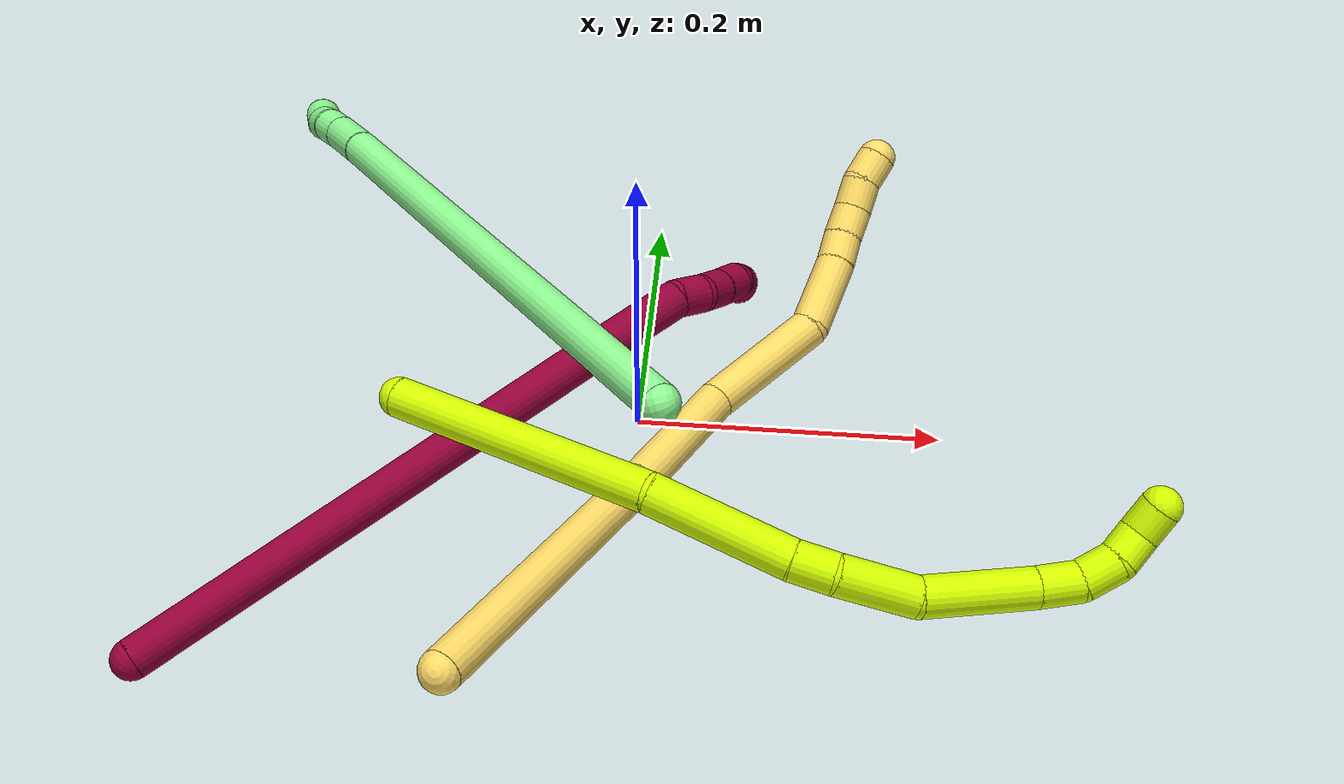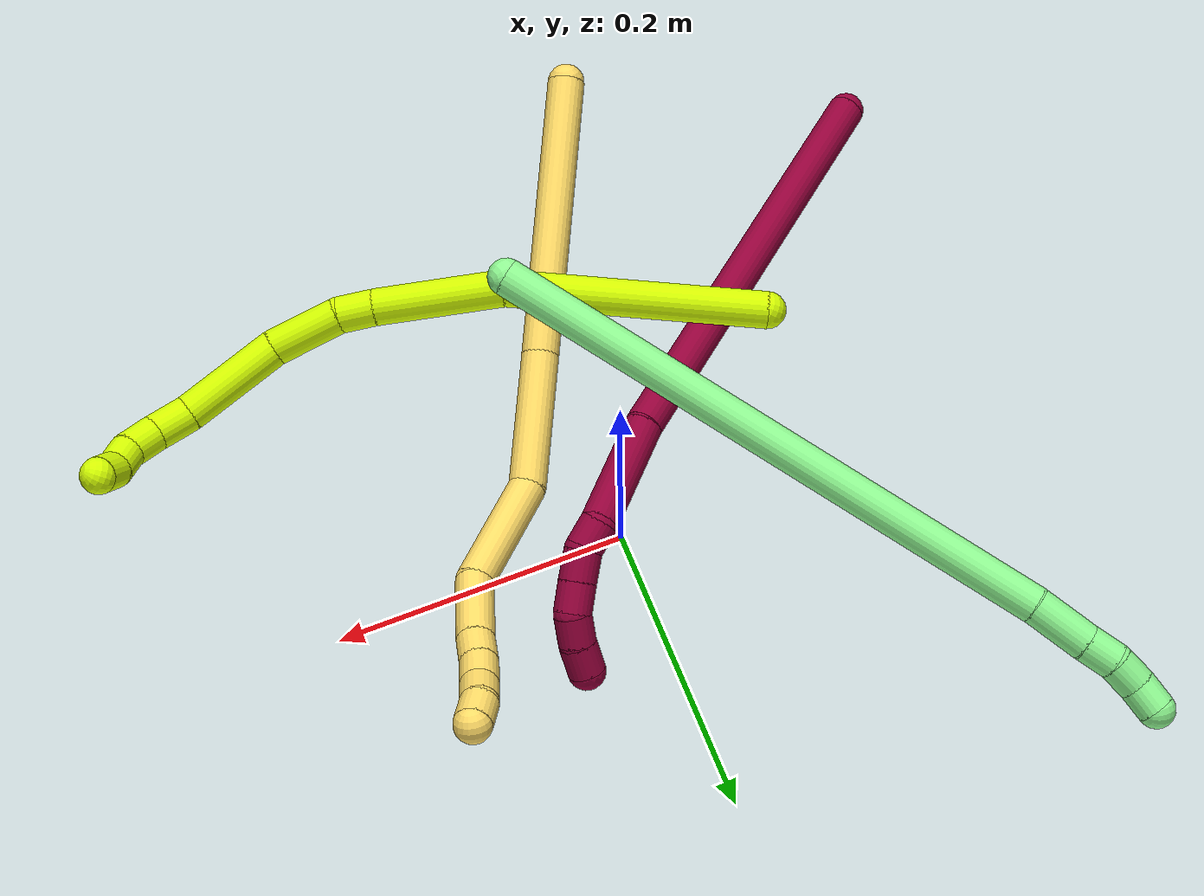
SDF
<sdf version="1.7">
 <world name="default">
  <model name="5">
   <static>0</static>
   <link name="5">
    <collision name="collision-cylinder-e_1_1_4">
     <pose>0.028454 0.061162 -0.070764 -2.42885 0.29532 -0.760254</pose>
     <geometry><cylinder><radius>0.0125</radius><length>0.19553</length></cylinder></geometry>
     <surface>
      <friction><ode><mu>1.16</mu><mu2>1.16</mu2><slip1>0</slip1><slip2>0</slip2></ode></friction>
      <contact><ode><kp>1e+06</kp><kd>1</kd><max_vel>0</max_vel><min_depth>0.001</min_depth></ode></contact>
     </surface>
    </collision>
    <visual name="visual-cylinder-e_1_1_4">
     <pose>0.028454 0.061162 -0.070764 -2.42885 0.29532 -0.760254</pose>
     <geometry><cylinder><radius>0.0125</radius><length>0.19553</length></cylinder></geometry>
     <material><ambient>1 0.858824 0.4 1</ambient></material>
    </visual>
    <collision name="collision-cylinder-e_2_4_5">
     <pose>0.070495 0.153706 -0.172856 -2.35534 0.297323 -0.693109</pose>
     <geometry><cylinder><radius>0.0125</radius><length>0.092755</length></cylinder></geometry>
     <surface>
      <friction><ode><mu>1.16</mu><mu2>1.16</mu2><slip1>0</slip1><slip2>0</slip2></ode></friction>
      <contact><ode><kp>1e+06</kp><kd>1</kd><max_vel>0</max_vel><min_depth>0.001</min_depth></ode></contact>
     </surface>
    </collision>
    <visual name="visual-cylinder-e_2_4_5">
     <pose>0.070495 0.153706 -0.172856 -2.35534 0.297323 -0.693109</pose>
     <geometry><cylinder><radius>0.0125</radius><length>0.092755</length></cylinder></geometry>
     <material><ambient>1 0.858824 0.4 1</ambient></material>
    </visual>
    <collision name="collision-cylinder-e_3_5_6">
     <pose>0.107942 0.215086 -0.217826 -1.99758 0.626671 -0.932528</pose>
     <geometry><cylinder><radius>0.0125</radius><length>0.081371</length></cylinder></geometry>
     <surface>
      <friction><ode><mu>1.16</mu><mu2>1.16</mu2><slip1>0</slip1><slip2>0</slip2></ode></friction>
      <contact><ode><kp>1e+06</kp><kd>1</kd><max_vel>0</max_vel><min_depth>0.001</min_depth></ode></contact>
     </surface>
    </collision>
    <visual name="visual-cylinder-e_3_5_6">
     <pose>0.107942 0.215086 -0.217826 -1.99758 0.626671 -0.932528</pose>
     <geometry><cylinder><radius>0.0125</radius><length>0.081371</length></cylinder></geometry>
     <material><ambient>1 0.858824 0.4 1</ambient></material>
    </visual>
    <collision name="collision-cylinder-e_4_6_7">
     <pose>0.135778 0.26844 -0.238999 -1.88275 0.160643 -0.220176</pose>
     <geometry><cylinder><radius>0.0125</radius><length>0.049719</length></cylinder></geometry>
     <surface>
      <friction><ode><mu>1.16</mu><mu2>1.16</mu2><slip1>0</slip1><slip2>0</slip2></ode></friction>
      <contact><ode><kp>1e+06</kp><kd>1</kd><max_vel>0</max_vel><min_depth>0.001</min_depth></ode></contact>
     </surface>
    </collision>
    <visual name="visual-cylinder-e_4_6_7">
     <pose>0.135778 0.26844 -0.238999 -1.88275 0.160643 -0.220176</pose>
     <geometry><cylinder><radius>0.0125</radius><length>0.049719</length></cylinder></geometry>
     <material><ambient>1 0.858824 0.4 1</ambient></material>
    </visual>
    <collision name="collision-cylinder-e_5_7_8">
     <pose>0.140377 0.301479 -0.249004 -1.82087 0.062164 -0.080021</pose>
     <geometry><cylinder><radius>0.0125</radius><length>0.020029</length></cylinder></geometry>
     <surface>
      <friction><ode><mu>1.16</mu><mu2>1.16</mu2><slip1>0</slip1><slip2>0</slip2></ode></friction>
      <contact><ode><kp>1e+06</kp><kd>1</kd><max_vel>0</max_vel><min_depth>0.001</min_depth></ode></contact>
     </surface>
    </collision>
    <visual name="visual-cylinder-e_5_7_8">
     <pose>0.140377 0.301479 -0.249004 -1.82087 0.062164 -0.080021</pose>
     <geometry><cylinder><radius>0.0125</radius><length>0.020029</length></cylinder></geometry>
     <material><ambient>1 0.858824 0.4 1</ambient></material>
    </visual>
    <collision name="collision-cylinder-e_6_8_9">
     <pose>0.142546 0.321198 -0.253154 -1.73637 0.150923 -0.178102</pose>
     <geometry><cylinder><radius>0.0125</radius><length>0.02058</length></cylinder></geometry>
     <surface>
      <friction><ode><mu>1.16</mu><mu2>1.16</mu2><slip1>0</slip1><slip2>0</slip2></ode></friction>
      <contact><ode><kp>1e+06</kp><kd>1</kd><max_vel>0</max_vel><min_depth>0.001</min_depth></ode></contact>
     </surface>
    </collision>
    <visual name="visual-cylinder-e_6_8_9">
     <pose>0.142546 0.321198 -0.253154 -1.73637 0.150923 -0.178102</pose>
     <geometry><cylinder><radius>0.0125</radius><length>0.02058</length></cylinder></geometry>
     <material><ambient>1 0.858824 0.4 1</ambient></material>
    </visual>
    <collision name="collision-cylinder-e_7_9_10">
     <pose>0.145447 0.341145 -0.254873 -1.57499 0.135792 -0.136362</pose>
     <geometry><cylinder><radius>0.0125</radius><length>0.02001</length></cylinder></geometry>
     <surface>
      <friction><ode><mu>1.16</mu><mu2>1.16</mu2><slip1>0</slip1><slip2>0</slip2></ode></friction>
      <contact><ode><kp>1e+06</kp><kd>1</kd><max_vel>0</max_vel><min_depth>0.001</min_depth></ode></contact>
     </surface>
    </collision>
    <visual name="visual-cylinder-e_7_9_10">
     <pose>0.145447 0.341145 -0.254873 -1.57499 0.135792 -0.136362</pose>
     <geometry><cylinder><radius>0.0125</radius><length>0.02001</length></cylinder></geometry>
     <material><ambient>1 0.858824 0.4 1</ambient></material>
    </visual>
    <collision name="collision-cylinder-e_8_10_2">
     <pose>0.1503 0.360344 -0.25617 -1.70525 0.3573 -0.407557</pose>
     <geometry><cylinder><radius>0.0125</radius><length>0.020006</length></cylinder></geometry>
     <surface>
      <friction><ode><mu>1.16</mu><mu2>1.16</mu2><slip1>0</slip1><slip2>0</slip2></ode></friction>
      <contact><ode><kp>1e+06</kp><kd>1</kd><max_vel>0</max_vel><min_depth>0.001</min_depth></ode></contact>
     </surface>
    </collision>
    <visual name="visual-cylinder-e_8_10_2">
     <pose>0.1503 0.360344 -0.25617 -1.70525 0.3573 -0.407557</pose>
     <geometry><cylinder><radius>0.0125</radius><length>0.020006</length></cylinder></geometry>
     <material><ambient>1 0.858824 0.4 1</ambient></material>
    </visual>
    <collision name="collision-sphere-2">
     <pose>0.153799 0.369631 -0.257427 0 -0 0</pose>
     <geometry><sphere><radius>0.0125</radius></sphere></geometry>
     <surface>
      <friction><ode><mu>1.16</mu><mu2>1.16</mu2><slip1>0</slip1><slip2>0</slip2></ode></friction>
      <contact><ode><kp>1e+06</kp><kd>1</kd><max_vel>0</max_vel><min_depth>0.001</min_depth></ode></contact>
     </surface>
    </collision>
    <visual name="visual-sphere-2">
     <pose>0.153799 0.369631 -0.257427 0 -0 0</pose>
     <geometry><sphere><radius>0.0125</radius></sphere></geometry>
     <material><ambient>1 0.858824 0.4 1</ambient></material>
    </visual>
    <collision name="collision-sphere-10">
     <pose>0.146802 0.351058 -0.254914 0 -0 0</pose>
     <geometry><sphere><radius>0.0125</radius></sphere></geometry>
     <surface>
      <friction><ode><mu>1.16</mu><mu2>1.16</mu2><slip1>0</slip1><slip2>0</slip2></ode></friction>
      <contact><ode><kp>1e+06</kp><kd>1</kd><max_vel>0</max_vel><min_depth>0.001</min_depth></ode></contact>
     </surface>
    </collision>
    <visual name="visual-sphere-10">
     <pose>0.146802 0.351058 -0.254914 0 -0 0</pose>
     <geometry><sphere><radius>0.0125</radius></sphere></geometry>
     <material><ambient>1 0.858824 0.4 1</ambient></material>
    </visual>
    <collision name="collision-sphere-9">
     <pose>0.144093 0.331232 -0.254831 0 -0 0</pose>
     <geometry><sphere><radius>0.0125</radius></sphere></geometry>
     <surface>
      <friction><ode><mu>1.16</mu><mu2>1.16</mu2><slip1>0</slip1><slip2>0</slip2></ode></friction>
      <contact><ode><kp>1e+06</kp><kd>1</kd><max_vel>0</max_vel><min_depth>0.001</min_depth></ode></contact>
     </surface>
    </collision>
    <visual name="visual-sphere-9">
     <pose>0.144093 0.331232 -0.254831 0 -0 0</pose>
     <geometry><sphere><radius>0.0125</radius></sphere></geometry>
     <material><ambient>1 0.858824 0.4 1</ambient></material>
    </visual>
    <collision name="collision-sphere-4">
     <pose>0.056908 0.122324 -0.141529 0 -0 0</pose>
     <geometry><sphere><radius>0.0125</radius></sphere></geometry>
     <surface>
      <friction><ode><mu>1.16</mu><mu2>1.16</mu2><slip1>0</slip1><slip2>0</slip2></ode></friction>
      <contact><ode><kp>1e+06</kp><kd>1</kd><max_vel>0</max_vel><min_depth>0.001</min_depth></ode></contact>
     </surface>
    </collision>
    <visual name="visual-sphere-4">
     <pose>0.056908 0.122324 -0.141529 0 -0 0</pose>
     <geometry><sphere><radius>0.0125</radius></sphere></geometry>
     <material><ambient>1 0.858824 0.4 1</ambient></material>
    </visual>
    <collision name="collision-sphere-1">
     <geometry><sphere><radius>0.0125</radius></sphere></geometry>
     <surface>
      <friction><ode><mu>1.16</mu><mu2>1.16</mu2><slip1>0</slip1><slip2>0</slip2></ode></friction>
      <contact><ode><kp>1e+06</kp><kd>1</kd><max_vel>0</max_vel><min_depth>0.001</min_depth></ode></contact>
     </surface>
    </collision>
    <visual name="visual-sphere-1">
     <geometry><sphere><radius>0.0125</radius></sphere></geometry>
     <material><ambient>1 0.858824 0.4 1</ambient></material>
    </visual>
    <collision name="collision-sphere-8">
     <pose>0.140999 0.311164 -0.251478 0 -0 0</pose>
     <geometry><sphere><radius>0.0125</radius></sphere></geometry>
     <surface>
      <friction><ode><mu>1.16</mu><mu2>1.16</mu2><slip1>0</slip1><slip2>0</slip2></ode></friction>
      <contact><ode><kp>1e+06</kp><kd>1</kd><max_vel>0</max_vel><min_depth>0.001</min_depth></ode></contact>
     </surface>
    </collision>
    <visual name="visual-sphere-8">
     <pose>0.140999 0.311164 -0.251478 0 -0 0</pose>
     <geometry><sphere><radius>0.0125</radius></sphere></geometry>
     <material><ambient>1 0.858824 0.4 1</ambient></material>
    </visual>
    <collision name="collision-sphere-5">
     <pose>0.084082 0.185088 -0.204184 0 -0 0</pose>
     <geometry><sphere><radius>0.0125</radius></sphere></geometry>
     <surface>
      <friction><ode><mu>1.16</mu><mu2>1.16</mu2><slip1>0</slip1><slip2>0</slip2></ode></friction>
      <contact><ode><kp>1e+06</kp><kd>1</kd><max_vel>0</max_vel><min_depth>0.001</min_depth></ode></contact>
     </surface>
    </collision>
    <visual name="visual-sphere-5">
     <pose>0.084082 0.185088 -0.204184 0 -0 0</pose>
     <geometry><sphere><radius>0.0125</radius></sphere></geometry>
     <material><ambient>1 0.858824 0.4 1</ambient></material>
    </visual>
    <collision name="collision-sphere-6">
     <pose>0.131802 0.245085 -0.231467 0 -0 0</pose>
     <geometry><sphere><radius>0.0125</radius></sphere></geometry>
     <surface>
      <friction><ode><mu>1.16</mu><mu2>1.16</mu2><slip1>0</slip1><slip2>0</slip2></ode></friction>
      <contact><ode><kp>1e+06</kp><kd>1</kd><max_vel>0</max_vel><min_depth>0.001</min_depth></ode></contact>
     </surface>
    </collision>
    <visual name="visual-sphere-6">
     <pose>0.131802 0.245085 -0.231467 0 -0 0</pose>
     <geometry><sphere><radius>0.0125</radius></sphere></geometry>
     <material><ambient>1 0.858824 0.4 1</ambient></material>
    </visual>
    <collision name="collision-sphere-7">
     <pose>0.139754 0.291795 -0.24653 0 -0 0</pose>
     <geometry><sphere><radius>0.0125</radius></sphere></geometry>
     <surface>
      <friction><ode><mu>1.16</mu><mu2>1.16</mu2><slip1>0</slip1><slip2>0</slip2></ode></friction>
      <contact><ode><kp>1e+06</kp><kd>1</kd><max_vel>0</max_vel><min_depth>0.001</min_depth></ode></contact>
     </surface>
    </collision>
    <visual name="visual-sphere-7">
     <pose>0.139754 0.291795 -0.24653 0 -0 0</pose>
     <geometry><sphere><radius>0.0125</radius></sphere></geometry>
     <material><ambient>1 0.858824 0.4 1</ambient></material>
    </visual>
    <inertial>
     <pose>0.078598 0.167497 -0.159799 0 -0 0</pose>
     <mass>0.5</mass>
     <inertia>
      <ixx>4.8e-05</ixx>
      <ixy>0</ixy>
      <ixz>0</ixz>
      <iyy>-0.000752</iyy>
      <iyz>0</iyz>
      <izz>-0.00075</izz>
     </inertia>
    </inertial>
   </link>
   <pose>-0.074197 -0.288507 0.101985 0.665165 -0.019816 -0.158842</pose>
  </model>
  <model name="8">
   <static>0</static>
   <link name="8">
    <collision name="collision-cylinder-e_1_1_4">
     <pose>0.115211 0.041289 0.103209 -0.380553 0.803287 -0.163249</pose>
     <geometry><cylinder><radius>0.0125</radius><length>0.320191</length></cylinder></geometry>
     <surface>
      <friction><ode><mu>1.16</mu><mu2>1.16</mu2><slip1>0</slip1><slip2>0</slip2></ode></friction>
      <contact><ode><kp>1e+06</kp><kd>1</kd><max_vel>0</max_vel><min_depth>0.001</min_depth></ode></contact>
     </surface>
    </collision>
    <visual name="visual-cylinder-e_1_1_4">
     <pose>0.115211 0.041289 0.103209 -0.380553 0.803287 -0.163249</pose>
     <geometry><cylinder><radius>0.0125</radius><length>0.320191</length></cylinder></geometry>
     <material><ambient>0.584314 0 0.227451 1</ambient></material>
    </visual>
    <collision name="collision-cylinder-e_2_4_5">
     <pose>0.259997 0.096404 0.22653 -0.602225 0.880844 -0.290663</pose>
     <geometry><cylinder><radius>0.0125</radius><length>0.076688</length></cylinder></geometry>
     <surface>
      <friction><ode><mu>1.16</mu><mu2>1.16</mu2><slip1>0</slip1><slip2>0</slip2></ode></friction>
      <contact><ode><kp>1e+06</kp><kd>1</kd><max_vel>0</max_vel><min_depth>0.001</min_depth></ode></contact>
     </surface>
    </collision>
    <visual name="visual-cylinder-e_2_4_5">
     <pose>0.259997 0.096404 0.22653 -0.602225 0.880844 -0.290663</pose>
     <geometry><cylinder><radius>0.0125</radius><length>0.076688</length></cylinder></geometry>
     <material><ambient>0.584314 0 0.227451 1</ambient></material>
    </visual>
    <collision name="collision-cylinder-e_3_5_6">
     <pose>0.298986 0.112392 0.24943 -0.659979 1.21229 -0.466226</pose>
     <geometry><cylinder><radius>0.0125</radius><length>0.02011</length></cylinder></geometry>
     <surface>
      <friction><ode><mu>1.16</mu><mu2>1.16</mu2><slip1>0</slip1><slip2>0</slip2></ode></friction>
      <contact><ode><kp>1e+06</kp><kd>1</kd><max_vel>0</max_vel><min_depth>0.001</min_depth></ode></contact>
     </surface>
    </collision>
    <visual name="visual-cylinder-e_3_5_6">
     <pose>0.298986 0.112392 0.24943 -0.659979 1.21229 -0.466226</pose>
     <geometry><cylinder><radius>0.0125</radius><length>0.02011</length></cylinder></geometry>
     <material><ambient>0.584314 0 0.227451 1</ambient></material>
    </visual>
    <collision name="collision-cylinder-e_4_6_7">
     <pose>0.317423 0.119784 0.252725 -1.47395 1.04351 -0.96179</pose>
     <geometry><cylinder><radius>0.0125</radius><length>0.020878</length></cylinder></geometry>
     <surface>
      <friction><ode><mu>1.16</mu><mu2>1.16</mu2><slip1>0</slip1><slip2>0</slip2></ode></friction>
      <contact><ode><kp>1e+06</kp><kd>1</kd><max_vel>0</max_vel><min_depth>0.001</min_depth></ode></contact>
     </surface>
    </collision>
    <visual name="visual-cylinder-e_4_6_7">
     <pose>0.317423 0.119784 0.252725 -1.47395 1.04351 -0.96179</pose>
     <geometry><cylinder><radius>0.0125</radius><length>0.020878</length></cylinder></geometry>
     <material><ambient>0.584314 0 0.227451 1</ambient></material>
    </visual>
    <collision name="collision-cylinder-e_5_7_8">
     <pose>0.335221 0.13056 0.253982 -1.43664 1.00304 -0.893819</pose>
     <geometry><cylinder><radius>0.0125</radius><length>0.020822</length></cylinder></geometry>
     <surface>
      <friction><ode><mu>1.16</mu><mu2>1.16</mu2><slip1>0</slip1><slip2>0</slip2></ode></friction>
      <contact><ode><kp>1e+06</kp><kd>1</kd><max_vel>0</max_vel><min_depth>0.001</min_depth></ode></contact>
     </surface>
    </collision>
    <visual name="visual-cylinder-e_5_7_8">
     <pose>0.335221 0.13056 0.253982 -1.43664 1.00304 -0.893819</pose>
     <geometry><cylinder><radius>0.0125</radius><length>0.020822</length></cylinder></geometry>
     <material><ambient>0.584314 0 0.227451 1</ambient></material>
    </visual>
    <collision name="collision-cylinder-e_6_8_9">
     <pose>0.350947 0.142614 0.251213 -2.06638 0.75421 -1.17276</pose>
     <geometry><cylinder><radius>0.0125</radius><length>0.020296</length></cylinder></geometry>
     <surface>
      <friction><ode><mu>1.16</mu><mu2>1.16</mu2><slip1>0</slip1><slip2>0</slip2></ode></friction>
      <contact><ode><kp>1e+06</kp><kd>1</kd><max_vel>0</max_vel><min_depth>0.001</min_depth></ode></contact>
     </surface>
    </collision>
    <visual name="visual-cylinder-e_6_8_9">
     <pose>0.350947 0.142614 0.251213 -2.06638 0.75421 -1.17276</pose>
     <geometry><cylinder><radius>0.0125</radius><length>0.020296</length></cylinder></geometry>
     <material><ambient>0.584314 0 0.227451 1</ambient></material>
    </visual>
    <collision name="collision-cylinder-e_7_9_2">
     <pose>0.363936 0.156186 0.242797 -2.17709 0.612391 -1.08659</pose>
     <geometry><cylinder><radius>0.0125</radius><length>0.021016</length></cylinder></geometry>
     <surface>
      <friction><ode><mu>1.16</mu><mu2>1.16</mu2><slip1>0</slip1><slip2>0</slip2></ode></friction>
      <contact><ode><kp>1e+06</kp><kd>1</kd><max_vel>0</max_vel><min_depth>0.001</min_depth></ode></contact>
     </surface>
    </collision>
    <visual name="visual-cylinder-e_7_9_2">
     <pose>0.363936 0.156186 0.242797 -2.17709 0.612391 -1.08659</pose>
     <geometry><cylinder><radius>0.0125</radius><length>0.021016</length></cylinder></geometry>
     <material><ambient>0.584314 0 0.227451 1</ambient></material>
    </visual>
    <collision name="collision-sphere-2">
     <pose>0.369976 0.163252 0.237897 0 -0 0</pose>
     <geometry><sphere><radius>0.0125</radius></sphere></geometry>
     <surface>
      <friction><ode><mu>1.16</mu><mu2>1.16</mu2><slip1>0</slip1><slip2>0</slip2></ode></friction>
      <contact><ode><kp>1e+06</kp><kd>1</kd><max_vel>0</max_vel><min_depth>0.001</min_depth></ode></contact>
     </surface>
    </collision>
    <visual name="visual-sphere-2">
     <pose>0.369976 0.163252 0.237897 0 -0 0</pose>
     <geometry><sphere><radius>0.0125</radius></sphere></geometry>
     <material><ambient>0.584314 0 0.227451 1</ambient></material>
    </visual>
    <collision name="collision-sphere-9">
     <pose>0.357896 0.14912 0.247696 0 -0 0</pose>
     <geometry><sphere><radius>0.0125</radius></sphere></geometry>
     <surface>
      <friction><ode><mu>1.16</mu><mu2>1.16</mu2><slip1>0</slip1><slip2>0</slip2></ode></friction>
      <contact><ode><kp>1e+06</kp><kd>1</kd><max_vel>0</max_vel><min_depth>0.001</min_depth></ode></contact>
     </surface>
    </collision>
    <visual name="visual-sphere-9">
     <pose>0.357896 0.14912 0.247696 0 -0 0</pose>
     <geometry><sphere><radius>0.0125</radius></sphere></geometry>
     <material><ambient>0.584314 0 0.227451 1</ambient></material>
    </visual>
    <collision name="collision-sphere-4">
     <pose>0.230423 0.082578 0.206418 0 -0 0</pose>
     <geometry><sphere><radius>0.0125</radius></sphere></geometry>
     <surface>
      <friction><ode><mu>1.16</mu><mu2>1.16</mu2><slip1>0</slip1><slip2>0</slip2></ode></friction>
      <contact><ode><kp>1e+06</kp><kd>1</kd><max_vel>0</max_vel><min_depth>0.001</min_depth></ode></contact>
     </surface>
    </collision>
    <visual name="visual-sphere-4">
     <pose>0.230423 0.082578 0.206418 0 -0 0</pose>
     <geometry><sphere><radius>0.0125</radius></sphere></geometry>
     <material><ambient>0.584314 0 0.227451 1</ambient></material>
    </visual>
    <collision name="collision-sphere-1">
     <geometry><sphere><radius>0.0125</radius></sphere></geometry>
     <surface>
      <friction><ode><mu>1.16</mu><mu2>1.16</mu2><slip1>0</slip1><slip2>0</slip2></ode></friction>
      <contact><ode><kp>1e+06</kp><kd>1</kd><max_vel>0</max_vel><min_depth>0.001</min_depth></ode></contact>
     </surface>
    </collision>
    <visual name="visual-sphere-1">
     <geometry><sphere><radius>0.0125</radius></sphere></geometry>
     <material><ambient>0.584314 0 0.227451 1</ambient></material>
    </visual>
    <collision name="collision-sphere-8">
     <pose>0.343999 0.136108 0.25473 0 -0 0</pose>
     <geometry><sphere><radius>0.0125</radius></sphere></geometry>
     <surface>
      <friction><ode><mu>1.16</mu><mu2>1.16</mu2><slip1>0</slip1><slip2>0</slip2></ode></friction>
      <contact><ode><kp>1e+06</kp><kd>1</kd><max_vel>0</max_vel><min_depth>0.001</min_depth></ode></contact>
     </surface>
    </collision>
    <visual name="visual-sphere-8">
     <pose>0.343999 0.136108 0.25473 0 -0 0</pose>
     <geometry><sphere><radius>0.0125</radius></sphere></geometry>
     <material><ambient>0.584314 0 0.227451 1</ambient></material>
    </visual>
    <collision name="collision-sphere-5">
     <pose>0.28957 0.110229 0.246643 0 -0 0</pose>
     <geometry><sphere><radius>0.0125</radius></sphere></geometry>
     <surface>
      <friction><ode><mu>1.16</mu><mu2>1.16</mu2><slip1>0</slip1><slip2>0</slip2></ode></friction>
      <contact><ode><kp>1e+06</kp><kd>1</kd><max_vel>0</max_vel><min_depth>0.001</min_depth></ode></contact>
     </surface>
    </collision>
    <visual name="visual-sphere-5">
     <pose>0.28957 0.110229 0.246643 0 -0 0</pose>
     <geometry><sphere><radius>0.0125</radius></sphere></geometry>
     <material><ambient>0.584314 0 0.227451 1</ambient></material>
    </visual>
    <collision name="collision-sphere-6">
     <pose>0.308402 0.114555 0.252217 0 -0 0</pose>
     <geometry><sphere><radius>0.0125</radius></sphere></geometry>
     <surface>
      <friction><ode><mu>1.16</mu><mu2>1.16</mu2><slip1>0</slip1><slip2>0</slip2></ode></friction>
      <contact><ode><kp>1e+06</kp><kd>1</kd><max_vel>0</max_vel><min_depth>0.001</min_depth></ode></contact>
     </surface>
    </collision>
    <visual name="visual-sphere-6">
     <pose>0.308402 0.114555 0.252217 0 -0 0</pose>
     <geometry><sphere><radius>0.0125</radius></sphere></geometry>
     <material><ambient>0.584314 0 0.227451 1</ambient></material>
    </visual>
    <collision name="collision-sphere-7">
     <pose>0.326444 0.125012 0.253233 0 -0 0</pose>
     <geometry><sphere><radius>0.0125</radius></sphere></geometry>
     <surface>
      <friction><ode><mu>1.16</mu><mu2>1.16</mu2><slip1>0</slip1><slip2>0</slip2></ode></friction>
      <contact><ode><kp>1e+06</kp><kd>1</kd><max_vel>0</max_vel><min_depth>0.001</min_depth></ode></contact>
     </surface>
    </collision>
    <visual name="visual-sphere-7">
     <pose>0.326444 0.125012 0.253233 0 -0 0</pose>
     <geometry><sphere><radius>0.0125</radius></sphere></geometry>
     <material><ambient>0.584314 0 0.227451 1</ambient></material>
    </visual>
    <inertial>
     <pose>0.182438 0.06854 0.152401 0 -0 0</pose>
     <mass>0.5</mass>
     <inertia>
      <ixx>0.001618</ixx>
      <ixy>0</ixy>
      <ixz>0</ixz>
      <iyy>0.00237</iyy>
      <iyz>0</iyz>
      <izz>-0.002724</izz>
     </inertia>
    </inertial>
   </link>
   <pose>-0.267637 -0.238865 0.023773 -0.044699 0.511779 0.413579</pose>
  </model>
  <model name="13">
   <static>0</static>
   <link name="13">
    <collision name="collision-cylinder-e_1_1_4">
     <pose>-0.16969 0.018698 0.100647 -0.183685 -1.02797 0.103909</pose>
     <geometry><cylinder><radius>0.0125</radius><length>0.396353</length></cylinder></geometry>
     <surface>
      <friction><ode><mu>1.16</mu><mu2>1.16</mu2><slip1>0</slip1><slip2>0</slip2></ode></friction>
      <contact><ode><kp>1e+06</kp><kd>1</kd><max_vel>0</max_vel><min_depth>0.001</min_depth></ode></contact>
     </surface>
    </collision>
    <visual name="visual-cylinder-e_1_1_4">
     <pose>-0.16969 0.018698 0.100647 -0.183685 -1.02797 0.103909</pose>
     <geometry><cylinder><radius>0.0125</radius><length>0.396353</length></cylinder></geometry>
     <material><ambient>0.564706 0.984314 0.572549 1</ambient></material>
    </visual>
    <collision name="collision-cylinder-e_2_4_5">
     <pose>-0.356756 0.037182 0.211173 0.021644 -1.05373 -0.012591</pose>
     <geometry><cylinder><radius>0.0125</radius><length>0.03998</length></cylinder></geometry>
     <surface>
      <friction><ode><mu>1.16</mu><mu2>1.16</mu2><slip1>0</slip1><slip2>0</slip2></ode></friction>
      <contact><ode><kp>1e+06</kp><kd>1</kd><max_vel>0</max_vel><min_depth>0.001</min_depth></ode></contact>
     </surface>
    </collision>
    <visual name="visual-cylinder-e_2_4_5">
     <pose>-0.356756 0.037182 0.211173 0.021644 -1.05373 -0.012591</pose>
     <geometry><cylinder><radius>0.0125</radius><length>0.03998</length></cylinder></geometry>
     <material><ambient>0.564706 0.984314 0.572549 1</ambient></material>
    </visual>
    <collision name="collision-cylinder-e_3_5_6">
     <pose>-0.383532 0.036998 0.227045 -0.004862 -1.00327 0.002666</pose>
     <geometry><cylinder><radius>0.0125</radius><length>0.022294</length></cylinder></geometry>
     <surface>
      <friction><ode><mu>1.16</mu><mu2>1.16</mu2><slip1>0</slip1><slip2>0</slip2></ode></friction>
      <contact><ode><kp>1e+06</kp><kd>1</kd><max_vel>0</max_vel><min_depth>0.001</min_depth></ode></contact>
     </surface>
    </collision>
    <visual name="visual-cylinder-e_3_5_6">
     <pose>-0.383532 0.036998 0.227045 -0.004862 -1.00327 0.002666</pose>
     <geometry><cylinder><radius>0.0125</radius><length>0.022294</length></cylinder></geometry>
     <material><ambient>0.564706 0.984314 0.572549 1</ambient></material>
    </visual>
    <collision name="collision-cylinder-e_4_6_7">
     <pose>-0.402059 0.034515 0.237811 0.484368 -1.03698 -0.280049</pose>
     <geometry><cylinder><radius>0.0125</radius><length>0.021206</length></cylinder></geometry>
     <surface>
      <friction><ode><mu>1.16</mu><mu2>1.16</mu2><slip1>0</slip1><slip2>0</slip2></ode></friction>
      <contact><ode><kp>1e+06</kp><kd>1</kd><max_vel>0</max_vel><min_depth>0.001</min_depth></ode></contact>
     </surface>
    </collision>
    <visual name="visual-cylinder-e_4_6_7">
     <pose>-0.402059 0.034515 0.237811 0.484368 -1.03698 -0.280049</pose>
     <geometry><cylinder><radius>0.0125</radius><length>0.021206</length></cylinder></geometry>
     <material><ambient>0.564706 0.984314 0.572549 1</ambient></material>
    </visual>
    <collision name="collision-cylinder-e_5_7_2">
     <pose>-0.420866 0.030791 0.245138 0.443009 -1.28682 -0.334579</pose>
     <geometry><cylinder><radius>0.0125</radius><length>0.020167</length></cylinder></geometry>
     <surface>
      <friction><ode><mu>1.16</mu><mu2>1.16</mu2><slip1>0</slip1><slip2>0</slip2></ode></friction>
      <contact><ode><kp>1e+06</kp><kd>1</kd><max_vel>0</max_vel><min_depth>0.001</min_depth></ode></contact>
     </surface>
    </collision>
    <visual name="visual-cylinder-e_5_7_2">
     <pose>-0.420866 0.030791 0.245138 0.443009 -1.28682 -0.334579</pose>
     <geometry><cylinder><radius>0.0125</radius><length>0.020167</length></cylinder></geometry>
     <material><ambient>0.564706 0.984314 0.572549 1</ambient></material>
    </visual>
    <collision name="collision-sphere-2">
     <pose>-0.430546 0.02958 0.24769 0 -0 0</pose>
     <geometry><sphere><radius>0.0125</radius></sphere></geometry>
     <surface>
      <friction><ode><mu>1.16</mu><mu2>1.16</mu2><slip1>0</slip1><slip2>0</slip2></ode></friction>
      <contact><ode><kp>1e+06</kp><kd>1</kd><max_vel>0</max_vel><min_depth>0.001</min_depth></ode></contact>
     </surface>
    </collision>
    <visual name="visual-sphere-2">
     <pose>-0.430546 0.02958 0.24769 0 -0 0</pose>
     <geometry><sphere><radius>0.0125</radius></sphere></geometry>
     <material><ambient>0.564706 0.984314 0.572549 1</ambient></material>
    </visual>
    <collision name="collision-sphere-7">
     <pose>-0.411187 0.032003 0.242585 0 -0 0</pose>
     <geometry><sphere><radius>0.0125</radius></sphere></geometry>
     <surface>
      <friction><ode><mu>1.16</mu><mu2>1.16</mu2><slip1>0</slip1><slip2>0</slip2></ode></friction>
      <contact><ode><kp>1e+06</kp><kd>1</kd><max_vel>0</max_vel><min_depth>0.001</min_depth></ode></contact>
     </surface>
    </collision>
    <visual name="visual-sphere-7">
     <pose>-0.411187 0.032003 0.242585 0 -0 0</pose>
     <geometry><sphere><radius>0.0125</radius></sphere></geometry>
     <material><ambient>0.564706 0.984314 0.572549 1</ambient></material>
    </visual>
    <collision name="collision-sphere-6">
     <pose>-0.392931 0.037027 0.233037 0 -0 0</pose>
     <geometry><sphere><radius>0.0125</radius></sphere></geometry>
     <surface>
      <friction><ode><mu>1.16</mu><mu2>1.16</mu2><slip1>0</slip1><slip2>0</slip2></ode></friction>
      <contact><ode><kp>1e+06</kp><kd>1</kd><max_vel>0</max_vel><min_depth>0.001</min_depth></ode></contact>
     </surface>
    </collision>
    <visual name="visual-sphere-6">
     <pose>-0.392931 0.037027 0.233037 0 -0 0</pose>
     <geometry><sphere><radius>0.0125</radius></sphere></geometry>
     <material><ambient>0.564706 0.984314 0.572549 1</ambient></material>
    </visual>
    <collision name="collision-sphere-5">
     <pose>-0.374132 0.036969 0.221053 0 -0 0</pose>
     <geometry><sphere><radius>0.0125</radius></sphere></geometry>
     <surface>
      <friction><ode><mu>1.16</mu><mu2>1.16</mu2><slip1>0</slip1><slip2>0</slip2></ode></friction>
      <contact><ode><kp>1e+06</kp><kd>1</kd><max_vel>0</max_vel><min_depth>0.001</min_depth></ode></contact>
     </surface>
    </collision>
    <visual name="visual-sphere-5">
     <pose>-0.374132 0.036969 0.221053 0 -0 0</pose>
     <geometry><sphere><radius>0.0125</radius></sphere></geometry>
     <material><ambient>0.564706 0.984314 0.572549 1</ambient></material>
    </visual>
    <collision name="collision-sphere-1">
     <geometry><sphere><radius>0.0125</radius></sphere></geometry>
     <surface>
      <friction><ode><mu>1.16</mu><mu2>1.16</mu2><slip1>0</slip1><slip2>0</slip2></ode></friction>
      <contact><ode><kp>1e+06</kp><kd>1</kd><max_vel>0</max_vel><min_depth>0.001</min_depth></ode></contact>
     </surface>
    </collision>
    <visual name="visual-sphere-1">
     <geometry><sphere><radius>0.0125</radius></sphere></geometry>
     <material><ambient>0.564706 0.984314 0.572549 1</ambient></material>
    </visual>
    <collision name="collision-sphere-4">
     <pose>-0.339379 0.037396 0.201294 0 -0 0</pose>
     <geometry><sphere><radius>0.0125</radius></sphere></geometry>
     <surface>
      <friction><ode><mu>1.16</mu><mu2>1.16</mu2><slip1>0</slip1><slip2>0</slip2></ode></friction>
      <contact><ode><kp>1e+06</kp><kd>1</kd><max_vel>0</max_vel><min_depth>0.001</min_depth></ode></contact>
     </surface>
    </collision>
    <visual name="visual-sphere-4">
     <pose>-0.339379 0.037396 0.201294 0 -0 0</pose>
     <geometry><sphere><radius>0.0125</radius></sphere></geometry>
     <material><ambient>0.564706 0.984314 0.572549 1</ambient></material>
    </visual>
    <inertial>
     <pose>-0.214168 0.022151 0.126766 0 -0 0</pose>
     <mass>0.5</mass>
     <inertia>
      <ixx>0.002924</ixx>
      <ixy>0</ixy>
      <ixz>0</ixz>
      <iyy>0.005466</iyy>
      <iyz>0</iyz>
      <izz>0.003995</izz>
     </inertia>
    </inertial>
   </link>
   <pose>0.024875 -0.136076 0.152846 1.91847 -0.103229 -1.45639</pose>
  </model>
  <model name="15">
   <static>0</static>
   <link name="15">
    <collision name="collision-cylinder-e_1_1_4">
     <pose>0.034455 -0.036497 0.071569 0.471585 0.40515 0.098616</pose>
     <geometry><cylinder><radius>0.0125</radius><length>0.174829</length></cylinder></geometry>
     <surface>
      <friction><ode><mu>1.16</mu><mu2>1.16</mu2><slip1>0</slip1><slip2>0</slip2></ode></friction>
      <contact><ode><kp>1e+06</kp><kd>1</kd><max_vel>0</max_vel><min_depth>0.001</min_depth></ode></contact>
     </surface>
    </collision>
    <visual name="visual-cylinder-e_1_1_4">
     <pose>0.034455 -0.036497 0.071569 0.471585 0.40515 0.098616</pose>
     <geometry><cylinder><radius>0.0125</radius><length>0.174829</length></cylinder></geometry>
     <material><ambient>0.835294 1 0 1</ambient></material>
    </visual>
    <collision name="collision-cylinder-e_2_4_5">
     <pose>0.096085 -0.093594 0.171514 0.627921 0.659298 0.221274</pose>
     <geometry><cylinder><radius>0.0125</radius><length>0.088724</length></cylinder></geometry>
     <surface>
      <friction><ode><mu>1.16</mu><mu2>1.16</mu2><slip1>0</slip1><slip2>0</slip2></ode></friction>
      <contact><ode><kp>1e+06</kp><kd>1</kd><max_vel>0</max_vel><min_depth>0.001</min_depth></ode></contact>
     </surface>
    </collision>
    <visual name="visual-cylinder-e_2_4_5">
     <pose>0.096085 -0.093594 0.171514 0.627921 0.659298 0.221274</pose>
     <geometry><cylinder><radius>0.0125</radius><length>0.088724</length></cylinder></geometry>
     <material><ambient>0.835294 1 0 1</ambient></material>
    </visual>
    <collision name="collision-cylinder-e_3_5_6">
     <pose>0.131432 -0.11857 0.208243 0.482618 0.71409 0.183097</pose>
     <geometry><cylinder><radius>0.0125</radius><length>0.024957</length></cylinder></geometry>
     <surface>
      <friction><ode><mu>1.16</mu><mu2>1.16</mu2><slip1>0</slip1><slip2>0</slip2></ode></friction>
      <contact><ode><kp>1e+06</kp><kd>1</kd><max_vel>0</max_vel><min_depth>0.001</min_depth></ode></contact>
     </surface>
    </collision>
    <visual name="visual-cylinder-e_3_5_6">
     <pose>0.131432 -0.11857 0.208243 0.482618 0.71409 0.183097</pose>
     <geometry><cylinder><radius>0.0125</radius><length>0.024957</length></cylinder></geometry>
     <material><ambient>0.835294 1 0 1</ambient></material>
    </visual>
    <collision name="collision-cylinder-e_4_6_7">
     <pose>0.15979 -0.129621 0.228943 0.495625 0.963205 0.262949</pose>
     <geometry><cylinder><radius>0.0125</radius><length>0.049171</length></cylinder></geometry>
     <surface>
      <friction><ode><mu>1.16</mu><mu2>1.16</mu2><slip1>0</slip1><slip2>0</slip2></ode></friction>
      <contact><ode><kp>1e+06</kp><kd>1</kd><max_vel>0</max_vel><min_depth>0.001</min_depth></ode></contact>
     </surface>
    </collision>
    <visual name="visual-cylinder-e_4_6_7">
     <pose>0.15979 -0.129621 0.228943 0.495625 0.963205 0.262949</pose>
     <geometry><cylinder><radius>0.0125</radius><length>0.049171</length></cylinder></geometry>
     <material><ambient>0.835294 1 0 1</ambient></material>
    </visual>
    <collision name="collision-cylinder-e_5_7_8">
     <pose>0.210666 -0.133995 0.259429 -0.126188 1.03349 -0.07177</pose>
     <geometry><cylinder><radius>0.0125</radius><length>0.07145</length></cylinder></geometry>
     <surface>
      <friction><ode><mu>1.16</mu><mu2>1.16</mu2><slip1>0</slip1><slip2>0</slip2></ode></friction>
      <contact><ode><kp>1e+06</kp><kd>1</kd><max_vel>0</max_vel><min_depth>0.001</min_depth></ode></contact>
     </surface>
    </collision>
    <visual name="visual-cylinder-e_5_7_8">
     <pose>0.210666 -0.133995 0.259429 -0.126188 1.03349 -0.07177</pose>
     <geometry><cylinder><radius>0.0125</radius><length>0.07145</length></cylinder></geometry>
     <material><ambient>0.835294 1 0 1</ambient></material>
    </visual>
    <collision name="collision-cylinder-e_6_8_9">
     <pose>0.25144 -0.130235 0.286181 -0.167846 0.85687 -0.076803</pose>
     <geometry><cylinder><radius>0.0125</radius><length>0.02668</length></cylinder></geometry>
     <surface>
      <friction><ode><mu>1.16</mu><mu2>1.16</mu2><slip1>0</slip1><slip2>0</slip2></ode></friction>
      <contact><ode><kp>1e+06</kp><kd>1</kd><max_vel>0</max_vel><min_depth>0.001</min_depth></ode></contact>
     </surface>
    </collision>
    <visual name="visual-cylinder-e_6_8_9">
     <pose>0.25144 -0.130235 0.286181 -0.167846 0.85687 -0.076803</pose>
     <geometry><cylinder><radius>0.0125</radius><length>0.02668</length></cylinder></geometry>
     <material><ambient>0.835294 1 0 1</ambient></material>
    </visual>
    <collision name="collision-cylinder-e_7_9_10">
     <pose>0.268439 -0.123582 0.302998 -0.564309 0.618969 -0.184861</pose>
     <geometry><cylinder><radius>0.0125</radius><length>0.023844</length></cylinder></geometry>
     <surface>
      <friction><ode><mu>1.16</mu><mu2>1.16</mu2><slip1>0</slip1><slip2>0</slip2></ode></friction>
      <contact><ode><kp>1e+06</kp><kd>1</kd><max_vel>0</max_vel><min_depth>0.001</min_depth></ode></contact>
     </surface>
    </collision>
    <visual name="visual-cylinder-e_7_9_10">
     <pose>0.268439 -0.123582 0.302998 -0.564309 0.618969 -0.184861</pose>
     <geometry><cylinder><radius>0.0125</radius><length>0.023844</length></cylinder></geometry>
     <material><ambient>0.835294 1 0 1</ambient></material>
    </visual>
    <collision name="collision-cylinder-e_8_10_11">
     <pose>0.280184 -0.110899 0.316048 -0.996546 0.49608 -0.273849</pose>
     <geometry><cylinder><radius>0.0125</radius><length>0.020286</length></cylinder></geometry>
     <surface>
      <friction><ode><mu>1.16</mu><mu2>1.16</mu2><slip1>0</slip1><slip2>0</slip2></ode></friction>
      <contact><ode><kp>1e+06</kp><kd>1</kd><max_vel>0</max_vel><min_depth>0.001</min_depth></ode></contact>
     </surface>
    </collision>
    <visual name="visual-cylinder-e_8_10_11">
     <pose>0.280184 -0.110899 0.316048 -0.996546 0.49608 -0.273849</pose>
     <geometry><cylinder><radius>0.0125</radius><length>0.020286</length></cylinder></geometry>
     <material><ambient>0.835294 1 0 1</ambient></material>
    </visual>
    <collision name="collision-cylinder-e_9_11_2">
     <pose>0.286181 -0.096558 0.328123 -0.758636 0.116869 -0.046631</pose>
     <geometry><cylinder><radius>0.0125</radius><length>0.020058</length></cylinder></geometry>
     <surface>
      <friction><ode><mu>1.16</mu><mu2>1.16</mu2><slip1>0</slip1><slip2>0</slip2></ode></friction>
      <contact><ode><kp>1e+06</kp><kd>1</kd><max_vel>0</max_vel><min_depth>0.001</min_depth></ode></contact>
     </surface>
    </collision>
    <visual name="visual-cylinder-e_9_11_2">
     <pose>0.286181 -0.096558 0.328123 -0.758636 0.116869 -0.046631</pose>
     <geometry><cylinder><radius>0.0125</radius><length>0.020058</length></cylinder></geometry>
     <material><ambient>0.835294 1 0 1</ambient></material>
    </visual>
    <collision name="collision-sphere-2">
     <pose>0.287351 -0.089706 0.335352 0 -0 0</pose>
     <geometry><sphere><radius>0.0125</radius></sphere></geometry>
     <surface>
      <friction><ode><mu>1.16</mu><mu2>1.16</mu2><slip1>0</slip1><slip2>0</slip2></ode></friction>
      <contact><ode><kp>1e+06</kp><kd>1</kd><max_vel>0</max_vel><min_depth>0.001</min_depth></ode></contact>
     </surface>
    </collision>
    <visual name="visual-sphere-2">
     <pose>0.287351 -0.089706 0.335352 0 -0 0</pose>
     <geometry><sphere><radius>0.0125</radius></sphere></geometry>
     <material><ambient>0.835294 1 0 1</ambient></material>
    </visual>
    <collision name="collision-sphere-11">
     <pose>0.285012 -0.10341 0.320894 0 -0 0</pose>
     <geometry><sphere><radius>0.0125</radius></sphere></geometry>
     <surface>
      <friction><ode><mu>1.16</mu><mu2>1.16</mu2><slip1>0</slip1><slip2>0</slip2></ode></friction>
      <contact><ode><kp>1e+06</kp><kd>1</kd><max_vel>0</max_vel><min_depth>0.001</min_depth></ode></contact>
     </surface>
    </collision>
    <visual name="visual-sphere-11">
     <pose>0.285012 -0.10341 0.320894 0 -0 0</pose>
     <geometry><sphere><radius>0.0125</radius></sphere></geometry>
     <material><ambient>0.835294 1 0 1</ambient></material>
    </visual>
    <collision name="collision-sphere-10">
     <pose>0.275356 -0.118389 0.311203 0 -0 0</pose>
     <geometry><sphere><radius>0.0125</radius></sphere></geometry>
     <surface>
      <friction><ode><mu>1.16</mu><mu2>1.16</mu2><slip1>0</slip1><slip2>0</slip2></ode></friction>
      <contact><ode><kp>1e+06</kp><kd>1</kd><max_vel>0</max_vel><min_depth>0.001</min_depth></ode></contact>
     </surface>
    </collision>
    <visual name="visual-sphere-10">
     <pose>0.275356 -0.118389 0.311203 0 -0 0</pose>
     <geometry><sphere><radius>0.0125</radius></sphere></geometry>
     <material><ambient>0.835294 1 0 1</ambient></material>
    </visual>
    <collision name="collision-sphere-9">
     <pose>0.261522 -0.128776 0.294793 0 -0 0</pose>
     <geometry><sphere><radius>0.0125</radius></sphere></geometry>
     <surface>
      <friction><ode><mu>1.16</mu><mu2>1.16</mu2><slip1>0</slip1><slip2>0</slip2></ode></friction>
      <contact><ode><kp>1e+06</kp><kd>1</kd><max_vel>0</max_vel><min_depth>0.001</min_depth></ode></contact>
     </surface>
    </collision>
    <visual name="visual-sphere-9">
     <pose>0.261522 -0.128776 0.294793 0 -0 0</pose>
     <geometry><sphere><radius>0.0125</radius></sphere></geometry>
     <material><ambient>0.835294 1 0 1</ambient></material>
    </visual>
    <collision name="collision-sphere-4">
     <pose>0.06891 -0.072995 0.143138 0 -0 0</pose>
     <geometry><sphere><radius>0.0125</radius></sphere></geometry>
     <surface>
      <friction><ode><mu>1.16</mu><mu2>1.16</mu2><slip1>0</slip1><slip2>0</slip2></ode></friction>
      <contact><ode><kp>1e+06</kp><kd>1</kd><max_vel>0</max_vel><min_depth>0.001</min_depth></ode></contact>
     </surface>
    </collision>
    <visual name="visual-sphere-4">
     <pose>0.06891 -0.072995 0.143138 0 -0 0</pose>
     <geometry><sphere><radius>0.0125</radius></sphere></geometry>
     <material><ambient>0.835294 1 0 1</ambient></material>
    </visual>
    <collision name="collision-sphere-1">
     <geometry><sphere><radius>0.0125</radius></sphere></geometry>
     <surface>
      <friction><ode><mu>1.16</mu><mu2>1.16</mu2><slip1>0</slip1><slip2>0</slip2></ode></friction>
      <contact><ode><kp>1e+06</kp><kd>1</kd><max_vel>0</max_vel><min_depth>0.001</min_depth></ode></contact>
     </surface>
    </collision>
    <visual name="visual-sphere-1">
     <geometry><sphere><radius>0.0125</radius></sphere></geometry>
     <material><ambient>0.835294 1 0 1</ambient></material>
    </visual>
    <collision name="collision-sphere-8">
     <pose>0.241357 -0.131694 0.277569 0 -0 0</pose>
     <geometry><sphere><radius>0.0125</radius></sphere></geometry>
     <surface>
      <friction><ode><mu>1.16</mu><mu2>1.16</mu2><slip1>0</slip1><slip2>0</slip2></ode></friction>
      <contact><ode><kp>1e+06</kp><kd>1</kd><max_vel>0</max_vel><min_depth>0.001</min_depth></ode></contact>
     </surface>
    </collision>
    <visual name="visual-sphere-8">
     <pose>0.241357 -0.131694 0.277569 0 -0 0</pose>
     <geometry><sphere><radius>0.0125</radius></sphere></geometry>
     <material><ambient>0.835294 1 0 1</ambient></material>
    </visual>
    <collision name="collision-sphere-5">
     <pose>0.123259 -0.114193 0.19989 0 -0 0</pose>
     <geometry><sphere><radius>0.0125</radius></sphere></geometry>
     <surface>
      <friction><ode><mu>1.16</mu><mu2>1.16</mu2><slip1>0</slip1><slip2>0</slip2></ode></friction>
      <contact><ode><kp>1e+06</kp><kd>1</kd><max_vel>0</max_vel><min_depth>0.001</min_depth></ode></contact>
     </surface>
    </collision>
    <visual name="visual-sphere-5">
     <pose>0.123259 -0.114193 0.19989 0 -0 0</pose>
     <geometry><sphere><radius>0.0125</radius></sphere></geometry>
     <material><ambient>0.835294 1 0 1</ambient></material>
    </visual>
    <collision name="collision-sphere-6">
     <pose>0.139604 -0.122946 0.216596 0 -0 0</pose>
     <geometry><sphere><radius>0.0125</radius></sphere></geometry>
     <surface>
      <friction><ode><mu>1.16</mu><mu2>1.16</mu2><slip1>0</slip1><slip2>0</slip2></ode></friction>
      <contact><ode><kp>1e+06</kp><kd>1</kd><max_vel>0</max_vel><min_depth>0.001</min_depth></ode></contact>
     </surface>
    </collision>
    <visual name="visual-sphere-6">
     <pose>0.139604 -0.122946 0.216596 0 -0 0</pose>
     <geometry><sphere><radius>0.0125</radius></sphere></geometry>
     <material><ambient>0.835294 1 0 1</ambient></material>
    </visual>
    <collision name="collision-sphere-7">
     <pose>0.179975 -0.136297 0.24129 0 -0 0</pose>
     <geometry><sphere><radius>0.0125</radius></sphere></geometry>
     <surface>
      <friction><ode><mu>1.16</mu><mu2>1.16</mu2><slip1>0</slip1><slip2>0</slip2></ode></friction>
      <contact><ode><kp>1e+06</kp><kd>1</kd><max_vel>0</max_vel><min_depth>0.001</min_depth></ode></contact>
     </surface>
    </collision>
    <visual name="visual-sphere-7">
     <pose>0.179975 -0.136297 0.24129 0 -0 0</pose>
     <geometry><sphere><radius>0.0125</radius></sphere></geometry>
     <material><ambient>0.835294 1 0 1</ambient></material>
    </visual>
    <inertial>
     <pose>0.130543 -0.088399 0.181147 0 -0 0</pose>
     <mass>0.5</mass>
     <inertia>
      <ixx>0.000566</ixx>
      <ixy>0</ixy>
      <ixz>0</ixz>
      <iyy>0.00056</iyy>
      <iyz>0</iyz>
      <izz>-1.8e-05</izz>
     </inertia>
    </inertial>
   </link>
   <pose>-0.136943 -0.081227 0.090064 0.720203 0.593883 0.58591</pose>
  </model>
 </world>
</sdf>
